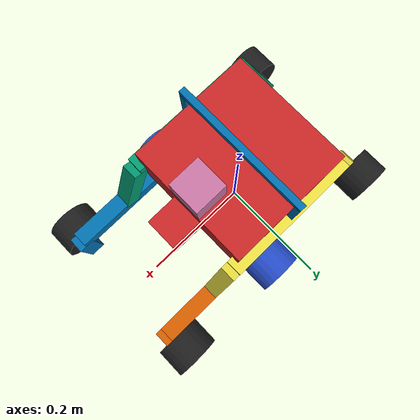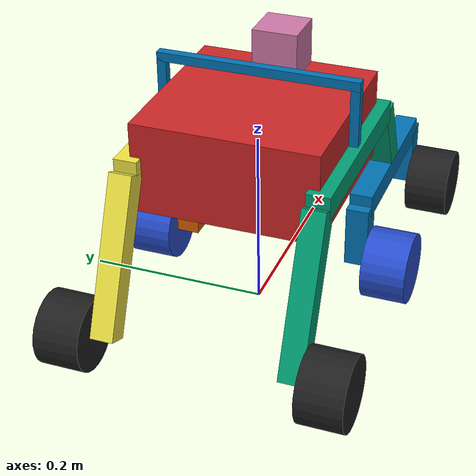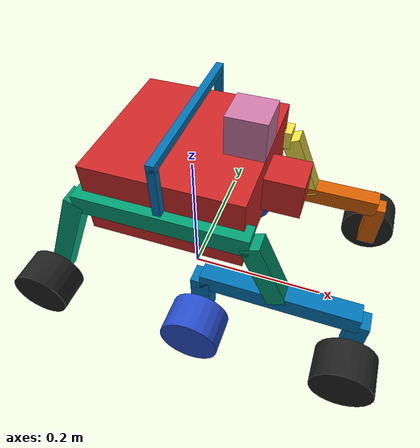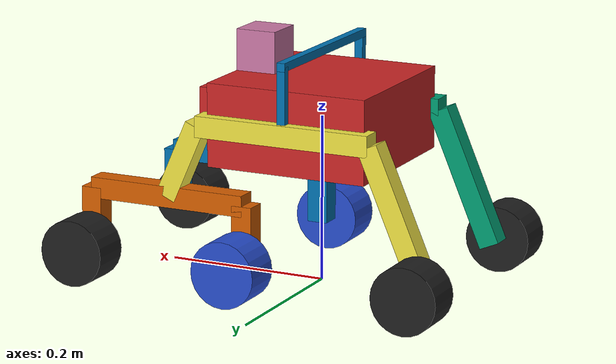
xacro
<?xml version='1.0'?>

<!--Another dumb comment-->
<robot name="mark2" xmlns:xacro="http://www.ros.org/wiki/xacro">

<xacro:property name="camera_value" value="0.05"/> <!-- Size of square 'camera' box -->

    <link name="base_footprint"></link>

    <joint name="fixed_joint" type="fixed">
        <origin xyz="0.0 0.0 0.2" rpy="0.0 0.0 0.0"/>
        <parent link="base_footprint"/>
        <child link="chassis"/>
    </joint>

    <link name="chassis">
        <inertial>
            <mass value="3"/>
            <origin xyz="0.0 0.0 0.0" rpy=" 0 0 0"/>
            <inertia
                ixx="0.0199731" ixy="0.0" ixz="0.0"
                iyy="0.0182087" iyz="0.0"
                izz="0.0267088"
            />
        </inertial>

        <collision name='chassis_collision'>
            <origin xyz="0.0 0.0 0.0" rpy=" 0 0 0"/>
            <geometry>
            <box size="0.2000 0.2000 0.1000"/>
            </geometry>
        </collision>

        <visual name='chassis_visual'>
            <origin xyz="0.0 0.0 0.0" rpy=" 0 0 0"/>
            <geometry>
            <box size="0.2000 0.2000 0.1000"/>
            </geometry>
        </visual>
    </link>

    <joint name="joint_1" type="fixed">
        <origin xyz="0.0 -0.1012 0.0" rpy="0.0 0.0 0.0"/>
        <parent link="chassis"/>
        <child link="right_leg_rocker"/>
        <axis xyz="0.0 1.0 0.0"/>
        <limit lower="-1.0" upper="1.0" effort="1.0" velocity="1.0"/>
    </joint>

    <link name="right_leg_rocker">

        <!-- visual /-->
        <visual name="r_up_part_visual">
            <geometry>
                <box size="0.2195 0.0254 0.0254"/>
            </geometry>
            <origin rpy="0 0 0" xyz="0.0 0.0 0.0"/>
        </visual>
        <visual name="r_down_part_visual">
            <geometry>
                <box size="0.173 0.0254 0.0254"/>
            </geometry>
            <origin rpy="0 -1.1659 0" xyz="-0.1436 0.0 -0.0807"/>
        </visual>
        <visual name="r_front_part_visual">
            <geometry>
                <box size="0.09741 0.0254 0.0254"/>
            </geometry>
            <origin rpy="0 1.1522 0" xyz="0.1295 0.0 -0.0445"/>
        </visual>

        <!-- collision /-->
        <collision name="r_up_part_collision">
            <geometry>
                <box size="0.2195 0.0254 0.0254"/>
            </geometry>
            <origin rpy="0 0 0" xyz="0.0 0.0 0.0"/>
        </collision>
        <collision name="r_down_part_collision">
            <geometry>
                <box size="0.173 0.0254 0.0254"/>
            </geometry>
            <origin rpy="0 -1.1659 0" xyz="-0.1436 0.0 -0.0807"/>
        </collision>
        <collision name="r_front_part_collision">
            <geometry>
                <box size="0.09741 0.0254 0.0254"/>
            </geometry>
            <origin rpy="0 1.1522 0" xyz="0.1295 0.0 -0.0445"/>
        </collision>

        <inertial>
            <mass value="0.1"/>
            <origin xyz="0.0 0.0 0.0" rpy=" 0 0 0"/>
            <inertia
                ixx="0.002555119" ixy="0.0" ixz="0.0"
                iyy="0.015204978" iyz="0.0"
                izz="0.012798286"
            />
        </inertial>

    </link>

    <joint name="joint_2" type="fixed">
        <origin xyz="0.0 0.1012 0.0" rpy="0.0 0.0 0.0"/>
        <parent link="chassis"/>
        <child link="left_leg_rocker"/>
        <axis xyz="0.0 1.0 0.0"/>
        <limit lower="-1.0" upper="1.0" effort="1.0" velocity="1.0"/>
    </joint>

    <link name="left_leg_rocker">

        <!-- visual /-->
        <visual name="l_up_part_visual">
            <geometry>
                <box size="0.2195 0.0254 0.0254"/>
            </geometry>
            <origin rpy="0 0 0" xyz="0.0 0.0 0.0"/>
        </visual>
        <visual name="l_down_part_visual">
            <geometry>
                <box size="0.173 0.0254 0.0254"/>
            </geometry>
            <origin rpy="0 -1.1659 0" xyz="-0.1436 0.0 -0.0807"/>
        </visual>
        <visual name="l_front_part_visual">
            <geometry>
                <box size="0.09741 0.0254 0.0254"/>
            </geometry>
            <origin rpy="0 1.1522 0" xyz="0.1295 0.0 -0.0445"/>
        </visual>

        <!-- collision /-->
        <collision name="l_up_part_collision">
            <geometry>
                <box size="0.2195 0.0254 0.0254"/>
            </geometry>
            <origin rpy="0 0 0" xyz="0.0 0.0 0.0"/>
        </collision>
        <collision name="l_down_part_collision">
            <geometry>
                <box size="0.173 0.0254 0.0254"/>
            </geometry>
            <origin rpy="0 -1.1659 0" xyz="-0.1436 0.0 -0.0807"/>
        </collision>
        <collision name="l_front_part_collision">
            <geometry>
                <box size="0.09741 0.0254 0.0254"/>
            </geometry>
            <origin rpy="0 1.1522 0" xyz="0.1295 0.0 -0.0445"/>
        </collision>

        <inertial>
            <mass value="0.1"/>
            <origin xyz="0.0 0.0 0.0" rpy=" 0 0 0"/>
            <inertia
                ixx="0.002555119" ixy="0.0" ixz="0.0"
                iyy="0.015204978" iyz="0.0"
                izz="0.012798286"
            />
        </inertial>

    </link>

    <joint name="joint_3" type="revolute">
        <origin rpy="0 0 0" xyz="0.1493 0.0 -0.089"/>
        <parent link="right_leg_rocker"/>
        <child link="right_leg_boogie"/>
        <axis xyz="0.0 1.0 0.0"/>
        <limit lower="-0.523" upper="0.523" effort="1.0" velocity="0.5"/>
    </joint>

    <link name="right_leg_boogie">

        <!-- visual /-->
        <visual name="r_base_visual">
            <geometry>
                <box size="0.200 0.0254 0.0254"/>
            </geometry>
            <origin rpy="0 0 0" xyz="0.0 0.0 0.0"/>
        </visual>
        <visual name="r_front_visual">
            <geometry>
                <box size="0.0254 0.0254 0.0695"/>
            </geometry>
            <origin rpy="0 0 0" xyz="0.1 0.0 -0.03475"/>
        </visual>
        <visual name="r_back_visual">
            <geometry>
                <box size="0.0254 0.0254 0.0695"/>
            </geometry>
            <origin rpy="0 0 0" xyz="-0.1 0.0 -0.03475"/>
        </visual>

        <!-- collision /-->

        <collision name="r_base_collision">
            <geometry>
                <box size="0.200 0.0254 0.0254"/>
            </geometry>
            <origin rpy="0 0 0" xyz="0.0 0.0 0.0"/>
        </collision>
        <collision name="r_front_collision">
            <geometry>
                <box size="0.0254 0.0254 0.0695"/>
            </geometry>
            <origin rpy="0 0 0" xyz="0.1 0.0 -0.03475"/>
        </collision>
        <collision name="r_back_collision">
            <geometry>
                <box size="0.0254 0.0254 0.0695"/>
            </geometry>
            <origin rpy="0 0 0" xyz="-0.1 0.0 -0.03475"/>
        </collision>

        <inertial>
            <mass value="0.05"/>
            <origin rpy="0 0 0" xyz="0.0 0.0 0.0"/>
            <inertia
                ixx="0.000664519" ixy="0.0" ixz="0.0"
                iyy="0.004936122" iyz="0.0"
                izz="0.004390159"
            />
        </inertial>

    </link>

    <joint name="joint_4" type="revolute">
        <origin rpy="0 0 0" xyz="0.1493 0.0 -0.089"/>
        <parent link="left_leg_rocker"/>
        <child link="left_leg_boogie"/>
        <axis xyz="0.0 1.0 0.0"/>
        <limit lower="-0.523" upper="0.523" effort="1.0" velocity="0.5"/>
    </joint>

    <link name="left_leg_boogie">

        <!-- visual /-->
        <visual name="l_base_visual">
            <geometry>
                <box size="0.200 0.0254 0.0254"/>
            </geometry>
            <origin rpy="0 0 0" xyz="0.0 0.0 0.0"/>
        </visual>
        <visual name="l_front_visual">
            <geometry>
                <box size="0.0254 0.0254 0.0695"/>
            </geometry>
            <origin rpy="0 0 0" xyz="0.1 0.0 -0.03475"/>
        </visual>
        <visual name="l_back_visual">
            <geometry>
                <box size="0.0254 0.0254 0.0695"/>
            </geometry>
            <origin rpy="0 0 0" xyz="-0.1 0.0 -0.03475"/>
        </visual>

        <!-- collision /-->

        <collision name="l_base_collision">
            <geometry>
                <box size="0.200 0.0254 0.0254"/>
            </geometry>
            <origin rpy="0 0 0" xyz="0.0 0.0 0.0"/>
        </collision>
        <collision name="l_front_collision">
            <geometry>
                <box size="0.0254 0.0254 0.0695"/>
            </geometry>
            <origin rpy="0 0 0" xyz="0.1 0.0 -0.03475"/>
        </collision>
        <collision name="l_back_collision">
            <geometry>
                <box size="0.0254 0.0254 0.0695"/>
            </geometry>
            <origin rpy="0 0 0" xyz="-0.1 0.0 -0.03475"/>
        </collision>

        <inertial>
            <mass value="0.05"/>
            <origin rpy="0 0 0" xyz="0.0 0.0 0.0"/>
            <inertia
                ixx="0.000664519" ixy="0.0" ixz="0.0"
                iyy="0.004936122" iyz="0.0"
                izz="0.004390159"
            />
        </inertial>

    </link>

    <joint name="joint_5" type="continuous">
        <origin xyz="0.1 -0.0377 -0.0695" rpy="0.0 1.5707 0.0"/>
        <parent link="right_leg_boogie"/>
        <child link="right_wheel_front"/>
        <axis xyz="0.0 1.0 0.0"/>
        <limit effort="1000.0" velocity="150.0"/>
    </joint>

    <link name="right_wheel_front">

        <visual name="right_wheel_front_visual">
            <origin rpy="1.5707 0.0 0.0" xyz="0.0 0.0 0.0"/>
            <geometry>
                <cylinder radius="0.04" length="0.05"/>
            </geometry>
        </visual>

        <collision name="right_wheel_front_collision">
            <origin rpy="1.5707 0.0 0.0" xyz="0.0 0.0 0.0"/>
            <geometry>
                <sphere radius="0.04"/>
            </geometry>
        </collision>
        <inertial>
            <mass value="15"/>
            <origin rpy="0.0 0.0 0.0" xyz="0.0 0.0 0.0"/>
            <inertia
                ixx="0.0003125" ixy="0" ixz="0"
                iyy="0.0004509" iyz="0"
                izz="0.0003125"
            />
        </inertial>

    </link>

    <joint name="joint_6" type="continuous">
        <origin xyz="-0.1 -0.0377 -0.0695" rpy="0.0 1.5707 0.0"/>
        <parent link="right_leg_boogie"/>
        <child link="right_wheel_medium"/>
        <axis xyz="0.0 1.0 0.0"/>
        <limit effort="1000.0" velocity="150.0"/>
    </joint>

    <link name="right_wheel_medium">

        <visual name="right_wheel_front_visual">
            <origin rpy="1.5707 0.0 0.0" xyz="0.0 0.0 0.0"/>
            <geometry>
                <cylinder radius="0.04" length="0.05"/>
            </geometry>
        </visual>

        <collision name="right_wheel_front_collision">
            <origin rpy="1.5707 0.0 0.0" xyz="0.0 0.0 0.0"/>
            <geometry>
                <sphere radius="0.04"/>
            </geometry>
        </collision>
        <inertial>
            <mass value="15"/>
            <origin rpy="0.0 0.0 0.0" xyz="0.0 0.0 0.0"/>
            <inertia
                ixx="0.0003125" ixy="0" ixz="0"
                iyy="0.0004509" iyz="0"
                izz="0.0003125"
            />
        </inertial>

    </link>

    <joint name="joint_7" type="continuous">
        <origin xyz="-0.1776 -0.0377 -0.1586" rpy="0.0 1.5707 0.0"/>
        <parent link="right_leg_rocker"/>
        <child link="right_wheel_back"/>
        <axis xyz="0.0 1.0 0.0"/>
        <limit effort="1000.0" velocity="150.0"/>
    </joint>

    <link name="right_wheel_back">

        <visual name="right_wheel_front_visual">
            <origin rpy="1.5707 0.0 0.0" xyz="0.0 0.0 0.0"/>
            <geometry>
                <cylinder radius="0.04" length="0.05"/>
            </geometry>
        </visual>

        <collision name="right_wheel_front_collision">
            <origin rpy="1.5707 0.0 0.0" xyz="0.0 0.0 0.0"/>
            <geometry>
                <sphere radius="0.04"/>
            </geometry>
        </collision>
        <inertial>
            <mass value="15"/>
            <origin rpy="0.0 0.0 0.0" xyz="0.0 0.0 0.0"/>
            <inertia
                ixx="0.0003125" ixy="0" ixz="0"
                iyy="0.0004509" iyz="0"
                izz="0.0003125"
            />
        </inertial>

    </link>

    <joint name="joint_8" type="continuous">
        <origin xyz="0.1 0.0377 -0.0695" rpy="0.0 1.5707 0.0"/>
        <parent link="left_leg_boogie"/>
        <child link="left_wheel_front"/>
        <axis xyz="0.0 1.0 0.0"/>
        <limit effort="1000.0" velocity="150.0"/>
    </joint>

    <link name="left_wheel_front">

        <visual name="left_wheel_front_visual">
            <origin rpy="1.5707 0.0 0.0" xyz="0.0 0.0 0.0"/>
            <geometry>
                <cylinder radius="0.04" length="0.05"/>
            </geometry>
        </visual>

        <collision name="left_wheel_front_collision">
            <origin rpy="1.5707 0.0 0.0" xyz="0.0 0.0 0.0"/>
            <geometry>
                <sphere radius="0.04"/>
            </geometry>
        </collision>
        <inertial>
            <mass value="15"/>
            <origin rpy="0.0 0.0 0.0" xyz="0.0 0.0 0.0"/>
            <inertia
                ixx="0.0003125" ixy="0" ixz="0"
                iyy="0.0004509" iyz="0"
                izz="0.0003125"
            />
        </inertial>

    </link>

    <joint name="joint_9" type="continuous">
        <origin xyz="-0.1 0.0377 -0.0695" rpy="0.0 1.5707 0.0"/>
        <parent link="left_leg_boogie"/>
        <child link="left_wheel_medium"/>
        <axis xyz="0.0 1.0 0.0"/>
        <limit effort="1000.0" velocity="150.0"/>
    </joint>

    <link name="left_wheel_medium">

        <visual name="right_wheel_front_visual">
            <origin rpy="1.5707 0.0 0.0" xyz="0.0 0.0 0.0"/>
            <geometry>
                <cylinder radius="0.04" length="0.05"/>
            </geometry>
        </visual>

        <collision name="right_wheel_front_collision">
            <origin rpy="1.5707 0.0 0.0" xyz="0.0 0.0 0.0"/>
            <geometry>
                <sphere radius="0.04"/>
            </geometry>
        </collision>
        <inertial>
            <mass value="15"/>
            <origin rpy="0.0 0.0 0.0" xyz="0.0 0.0 0.0"/>
            <inertia
                ixx="0.0003125" ixy="0" ixz="0"
                iyy="0.0004509" iyz="0"
                izz="0.0003125"
            />
        </inertial>

    </link>

    <joint name="joint_10" type="continuous">
        <origin xyz="-0.1776 0.0377 -0.1586" rpy="0.0 1.5707 0.0"/>
        <parent link="left_leg_rocker"/>
        <child link="left_wheel_back"/>
        <axis xyz="0.0 1.0 0.0"/>
        <limit effort="1000.0" velocity="150.0"/>
    </joint>

    <link name="left_wheel_back">

        <visual name="right_wheel_front_visual">
            <origin rpy="1.5707 0.0 0.0" xyz="0.0 0.0 0.0"/>
            <geometry>
                <cylinder radius="0.04" length="0.05"/>
            </geometry>
        </visual>

        <collision name="right_wheel_front_collision">
            <origin rpy="1.5707 0.0 0.0" xyz="0.0 0.0 0.0"/>
            <geometry>
                <sphere radius="0.04"/>
            </geometry>
        </collision>
        <inertial>
            <mass value="15"/>
            <origin rpy="0.0 0.0 0.0" xyz="0.0 0.0 0.0"/>
            <inertia
                ixx="0.0003125" ixy="0" ixz="0"
                iyy="0.0004509" iyz="0"
                izz="0.0003125"
            />
        </inertial>

    </link>

    <!-- differential -->

    <joint name="joint_11" type="fixed">
        <origin xyz="0.0 0.1012 0.08" rpy="0.0 0.0 0.0"/>
        <parent link="right_leg_rocker"/>
        <child link="diff"/>
    </joint>

    <link name="diff">

        <visual name="">
            <origin xyz="0.0 0.0 0.0" rpy="0.0 0.0 0.0"/>
            <geometry>
                <box size="0.01 0.22 0.01"/>
            </geometry>
        </visual>

        <visual name="">
            <origin xyz="0.0 0.105 -0.04" rpy="0.0 0.0 0.0"/>
            <geometry>
                <box size="0.01 0.01 0.08"/>
            </geometry>
        </visual>

        <visual name="">
            <origin xyz="0.0 -0.105 -0.04" rpy="0.0 0.0 0.0"/>
            <geometry>
                <box size="0.01 0.01 0.08"/>
            </geometry>
        </visual>

        <collision>
            <origin xyz="0.0 0.0 0.0" rpy="0.0 0.0 0.0"/>
            <geometry>
                <box size="0.01 0.22 0.01"/>
            </geometry>
        </collision>

        <collision>
            <origin xyz="0.0 0.105 -0.04" rpy="0.0 0.0 0.0"/>
            <geometry>
                <box size="0.01 0.01 0.08"/>
            </geometry>
        </collision>

        <collision>
            <origin xyz="0.0 -0.105 -0.04" rpy="0.0 0.0 0.0"/>
            <geometry>
                <box size="0.01 0.01 0.08"/>
            </geometry>
        </collision>

        <inertial>
            <origin xyz="0.0 0.0 0.0" rpy="0.0 0.0 0.0"/>
            <mass value="0.253"/>
            <inertia
                ixx="0.000121495" ixy="0.0" ixz="0.0"
                iyy="0.001504113" iyz="0.0"
                izz="0.001498187"
            />
        </inertial>
    </link>

    <!-- Camera -->

    <joint name="fixed" type="fixed">
        <origin xyz="0.125 0.0 0.0" rpy="0.0 0.0 0.0"/>
        <parent link="chassis"/>
        <child link="camera_link"/>
    </joint>

    <link name="camera_link">
        <collision>
        <origin xyz="0 0 0" rpy="0 0 0"/>
        <geometry>
        <box size="${camera_value} ${camera_value} ${camera_value}"/>
        </geometry>
        </collision>

        <visual>
        <origin xyz="0 0 0" rpy="0 0 0"/>
        <geometry>
        <box size="${camera_value} ${camera_value} ${camera_value}"/>
        </geometry>
        <material name="red"/>
        </visual>

        <inertial>
        <mass value="1e-5" />
        <origin xyz="0 0 0" rpy="0 0 0"/>
        <inertia ixx="1e-6" ixy="0" ixz="0" iyy="1e-6" iyz="0" izz="1e-6" />
        </inertial>
    </link>

    <!-- Laser -->

    <joint name="hokuyo_joint" type="fixed">
        <axis xyz="0 1 0" />
        <origin xyz="0.075 0.0 0.075" rpy="0 0 0"/>
        <parent link="chassis"/>
        <child link="hokuyo_link"/>
    </joint>

    <link name="hokuyo_link">
        <collision>
            <origin xyz="0 0 0" rpy="0 0 0"/>
            <geometry>
            <box size="0.05 0.05 0.05"/>
            </geometry>
        </collision>
        <visual>
            <origin xyz="0 0 0" rpy="0 0 0"/>
            <geometry>
            <box size="0.05 0.05 0.05"/>
            </geometry>
        </visual>
        <inertial>
            <mass value="1e-5" />
            <origin xyz="0 0 0" rpy="0 0 0"/>
            <inertia ixx="1e-6" ixy="0" ixz="0" iyy="1e-6" iyz="0" izz="1e-6" />
        </inertial>
    </link>

    <!-- Transmission -->

    <transmission name="tran1">
        <type>transmission_interface/SimpleTransmission</type>
        <joint name="joint_5">
            <hardwareInterface>hardware_interface/VelocityJointInterface</hardwareInterface>
        </joint>
        <actuator name="Wheel_RF">
            <mechanicalReduction>1</mechanicalReduction>
        </actuator>
    </transmission>

    <transmission name="tran2">
        <type>transmission_interface/SimpleTransmission</type>
        <joint name="joint_6">
            <hardwareInterface>hardware_interface/VelocityJointInterface</hardwareInterface>
        </joint>
        <actuator name="Wheel_RM">
            <mechanicalReduction>1</mechanicalReduction>
        </actuator>
    </transmission>

    <transmission name="tran3">
        <type>transmission_interface/SimpleTransmission</type>
        <joint name="joint_7">
            <hardwareInterface>hardware_interface/VelocityJointInterface</hardwareInterface>
        </joint>
        <actuator name="Wheel_RB">
            <mechanicalReduction>1</mechanicalReduction>
        </actuator>
    </transmission>

    <transmission name="tran4">
        <type>transmission_interface/SimpleTransmission</type>
        <joint name="joint_8">
            <hardwareInterface>hardware_interface/VelocityJointInterface</hardwareInterface>
        </joint>
        <actuator name="Wheel_LF">
            <mechanicalReduction>1</mechanicalReduction>
        </actuator>
    </transmission>

    <transmission name="tran5">
        <type>transmission_interface/SimpleTransmission</type>
        <joint name="joint_9">
            <hardwareInterface>hardware_interface/VelocityJointInterface</hardwareInterface>
        </joint>
        <actuator name="Wheel_LM">
            <mechanicalReduction>1</mechanicalReduction>
        </actuator>
    </transmission>

    <transmission name="tran6">
        <type>transmission_interface/SimpleTransmission</type>
        <joint name="joint_10">
            <hardwareInterface>hardware_interface/VelocityJointInterface</hardwareInterface>
        </joint>
        <actuator name="Wheel_LB">
            <mechanicalReduction>1</mechanicalReduction>
        </actuator>
    </transmission>

    <!-- Plugins -->

    <gazebo>
        <plugin name="gazebo_ros_control" filename="libgazebo_ros_control.so">
            <robotNamespace>/</robotNamespace>
        </plugin>
    </gazebo>

    <!-- camera -->
    <gazebo reference="camera_link">
        <sensor type="camera" name="camera1">
        <update_rate>20.0</update_rate>
        <camera name="head">
            <horizontal_fov>1.3962634</horizontal_fov>
            <image>
            <width>400</width>
            <height>400</height>
            <format>R8G8B8</format>
            </image>
            <clip>
            <near>0.02</near>
            <far>300</far>
            </clip>
        </camera>
        <plugin name="camera_controller" filename="libgazebo_ros_camera.so">
            <alwaysOn>true</alwaysOn>
            <updateRate>0.0</updateRate>
            <cameraName>camera1</cameraName>
            <imageTopicName>image_raw</imageTopicName>
            <cameraInfoTopicName>camera_info</cameraInfoTopicName>
            <frameName>camera_link</frameName>
            <!-- setting hackBaseline to anything but 0.0 will cause a misalignment
                between the gazebo sensor image and the frame it is supposed to
                be attached to -->
            <hackBaseline>0.0</hackBaseline>
            <distortionK1>0.0</distortionK1>
            <distortionK2>0.0</distortionK2>
            <distortionK3>0.0</distortionK3>
            <distortionT1>0.0</distortionT1>
            <distortionT2>0.0</distortionT2>
            <CxPrime>0</CxPrime>
            <Cx>0.0</Cx>
            <Cy>0.0</Cy>
            <focalLength>0.0</focalLength>
        </plugin>
        </sensor>
    </gazebo>

    <!-- laser -->
    <gazebo reference="hokuyo_link">
        <sensor type="gpu_ray" name="head_hokuyo_sensor">
        <pose>0 0 0 0 0 0</pose>
        <visualize>false</visualize>
        <update_rate>40</update_rate>
        <ray>
            <scan>
            <horizontal>
                <samples>720</samples>
                <resolution>1</resolution>
                <min_angle>-1.570796</min_angle>
                <max_angle>1.570796</max_angle>
            </horizontal>
            </scan>
            <range>
            <min>0.10</min>
            <max>30.0</max>
            <resolution>0.01</resolution>
            </range>
            <noise>
            <type>gaussian</type>
            <mean>0.0</mean>
            <stddev>0.01</stddev>
            </noise>
        </ray>
        <plugin name="gazebo_ros_head_hokuyo_controller" filename="libgazebo_ros_gpu_laser.so">
            <topicName>/rrbot/laser/scan</topicName>
            <frameName>hokuyo_link</frameName>
        </plugin>
        </sensor>
    </gazebo>

    <!-- Odom -->

    <gazebo>
        <plugin name="p3d_base_controller" filename="libgazebo_ros_p3d.so">
            <alwaysOn>true</alwaysOn>
            <updateRate>50.0</updateRate>
            <bodyName>base_footprint</bodyName>
            <topicName>odom</topicName>
            <gaussianNoise>0.01</gaussianNoise>
            <frameName>world</frameName>
            <xyzOffsets>0 0 0</xyzOffsets>
            <rpyOffsets>0 0 0</rpyOffsets>
        </plugin>
    </gazebo>

    <!-- Color -->

    <gazebo reference="chassis">
        <material>Gazebo/Red</material>
    </gazebo>

    <gazebo reference="right_wheel_front">
        <material>Gazebo/Black</material>
    </gazebo>

    <gazebo reference="right_wheel_medium">
        <material>Gazebo/Blue</material>
    </gazebo>

    <gazebo reference="right_wheel_back">
        <material>Gazebo/Black</material>
    </gazebo>

    <gazebo reference="left_wheel_front">
        <material>Gazebo/Black</material>
    </gazebo>

    <gazebo reference="left_wheel_medium">
        <material>Gazebo/Blue</material>
    </gazebo>

    <gazebo reference="left_wheel_back">
        <material>Gazebo/Black</material>
    </gazebo>

</robot>
